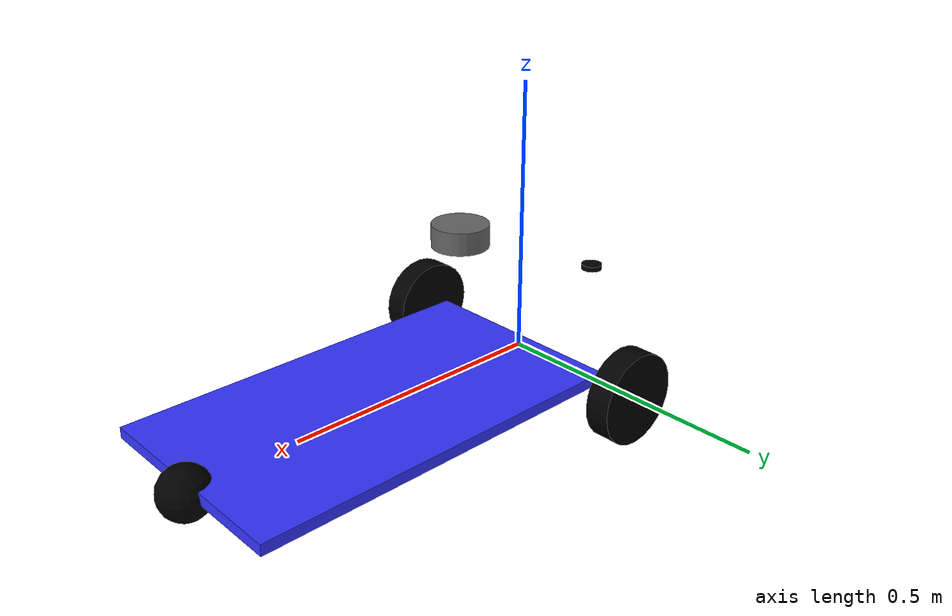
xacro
<?xml version="1.0"?>
<robot name="hoverboard_robot" xmlns:xacro="http://ros.org/wiki/xacro">

    <xacro:include filename="materials.xacro" />
    <xacro:include filename="macros.xacro" />
    <xacro:include filename="wheels.xacro" />
    <xacro:include filename="ros2_control.xacro" />
    <xacro:include filename="lidar.xacro" />
    <xacro:include filename="gps.xacro" />
    <xacro:include filename="mag.xacro" />

    <xacro:property name="plate_length" value="0.7" />
    <xacro:property name="plate_width" value="0.4" />
    <xacro:property name="plate_height" value="0.02" />

    <xacro:property name="chassis_weight" value="1.0" />

    <xacro:property name="driving_wheel_diameter" value="0.165" />
    <xacro:property name="driving_wheel_thickness" value="0.045" />
    <xacro:property name="driving_wheel_weight" value="2.2" />

    <xacro:property name="caster_wheel_diameter" value="0.09" />
    <xacro:property name="caster_wheel_weight" value="0.1" />

    <link name="base_link">
    </link>

    <link name="plate">
        <visual>
            <origin xyz="0.35 0 0.01"/>
            <geometry>
                <box size="0.7 0.4 0.02"/>
            </geometry>
            <material name="blue"/>
        </visual>
        <collision>
            <origin xyz="0.35 0 0.01"/>
            <geometry>
                <box size="0.7 0.4 0.02"/>
            </geometry>
        </collision>
        <xacro:box_inertia mass="5" x="0.7" y="0.4" z="0.02">
            <origin xyz="0 0 0.01" rpy="0.0 0.0 0.0"/>
        </xacro:box_inertia>
    </link>

    <joint name="base_link_plate_joint" type="fixed">
        <origin xyz="0 0 0"/>
        <parent link="base_link" />
        <child link="plate" />
    </joint>

    <xacro:driving_wheel suffix="left" reflect="1"/>
    <xacro:driving_wheel suffix="right" reflect="-1"/>

    <xacro:caster_wheel suffix="back" reflect="1" />

    <xacro:hoverboard_ros2_control name="Hoverboard" />

</robot>

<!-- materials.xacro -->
<robot xmlns:xacro="http://ros.org/wiki/xacro">

    <material name="silver">
        <color rgba="0.60 0.60 0.60 1"/>
    </material>

    <material name="gray">
        <color rgba="0.40 0.40 0.40 1"/>
    </material>

    <material name="black">
        <color rgba="0 0 0 1"/>
    </material>

    <material name="green">
        <color rgba="0 0.5 0 1" />
    </material>

    <material name="red">
        <color rgba="0.5 0 0 1" />
    </material>

    <material name="blue">
        <color rgba="0.2 0.2 1 1" />
    </material>

    <material name="white">
        <color rgba="1 1 1 1" />
    </material>
    <material name="blueclear">
        <color rgba="0.2 0.2 1 0.3" />
    </material>

</robot>

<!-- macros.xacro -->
<robot xmlns:xacro="http://ros.org/wiki/xacro">

    <xacro:macro name="default_inertial" params="mass">
        <inertial>
            <mass value="${mass}" />
            <inertia ixx="1e-3" ixy="0.0" ixz="0.0" iyy="1e-3" iyz="0.0" izz="1e-3"/>
        </inertial>
    </xacro:macro>

    <!-- Define some commonly used intertial properties  -->
    <xacro:macro name="box_inertia" params="mass x y z *origin">
        <inertial>
            <xacro:insert_block name="origin"/>
            <mass value="${mass}" />
            <inertia ixx="${(1/12) * mass * (y*y+z*z)}" ixy="0.0" ixz="0.0"
                    iyy="${(1/12) * mass * (x*x+z*z)}" iyz="0.0"
                    izz="${(1/12) * mass * (x*x+y*y)}" />
        </inertial>
    </xacro:macro>

    <xacro:macro name="cylinder_inertia" params="m r h roll">
        <inertial>
            <origin xyz="0 0 0" rpy="${roll} 0 0" />
            <mass value="${m}"/>
            <inertia ixx="${(m/12) * (3*r*r + h*h)}" ixy = "0" ixz = "0" iyy="${(m/12) * (3*r*r + h*h)}" iyz = "0" izz="${(m/2) * (r*r)}"/>
        </inertial>
    </xacro:macro>

    <xacro:macro name="sphere_inertia" params="m r">
        <inertial>
            <mass value="${m}"/>
            <inertia ixx="${(2/5) * m * (r*r)}" ixy="0.0" ixz="0.0" iyy="${(2/5) * m * (r*r)}" iyz="0.0" izz="${(2/5) * m * (r*r)}"/>
        </inertial>
    </xacro:macro>

</robot>

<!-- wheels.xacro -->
<robot xmlns:xacro="http://ros.org/wiki/xacro">

    <!-- TODO: The model is made in a very simple form, it would be nice to make it a bit better. Is someone willing? -->
    <xacro:macro name="driving_wheel" params="suffix reflect">
        <link name="driving_wheel_${suffix}">
            <visual>
                <origin xyz="0 0 0" rpy="${pi/2} 0 0" />
                <geometry>
                    <cylinder radius="${driving_wheel_diameter/2}" length="${driving_wheel_thickness}"/>
                </geometry>
                <material name="black"/>
            </visual>
            <collision>
                <origin xyz="0 0 0" rpy="${pi/2} 0 0" />
                <contact_coefficients mu="100.0" kp="0.0" kd="0.0" />
                <geometry>
                    <cylinder radius="${driving_wheel_diameter/2}" length="${driving_wheel_thickness}"/>
                </geometry>
            </collision>
            <xacro:cylinder_inertia m="${driving_wheel_weight}" r="${driving_wheel_diameter/2}" h="${driving_wheel_thickness}" roll="${pi/2}"/>
        </link>

        <joint name="driving_wheel_${suffix}_joint" type="continuous">
            <axis xyz="0 1 0" rpy="0 0 0" />
            <parent link="base_link"/>
            <child link="driving_wheel_${suffix}"/>
            <origin xyz="0 ${0.26*reflect} 0.0" rpy="0 0 0"/>
        </joint>

        <gazebo reference="driving_wheel_${suffix}">
            <mu1 value="0.50"/>
            <mu2 value="3.0"/>
            <kp value="10000000.0" />
            <kd value="100.0" />
            <fdir1 value="0 0 1"/>
            <material>Gazebo/Black</material>
        </gazebo>

    </xacro:macro>

    <xacro:macro name="caster_wheel" params="suffix reflect">
        <link name="caster_wheel_${suffix}">
            <visual>
                <origin xyz="0 0 0" rpy="0 0 0" />
                <geometry>
                    <sphere radius="${caster_wheel_diameter/2}" />
                </geometry>
                <material name="black"/>
            </visual>
            <collision>
                <origin xyz="0 0 0" rpy="0 0 0" />
                <contact_coefficients mu="0.0" kp="0.0" kd="0.0" />
                <geometry>
                    <sphere radius="${caster_wheel_diameter/2}" />
                </geometry>
            </collision>
            <xacro:sphere_inertia m="${caster_wheel_weight}" r="${caster_wheel_diameter/2}"/>
        </link>

        <joint name="caster_wheel_${suffix}_joint" type="fixed">
            <parent link="base_link"/>
            <child link="caster_wheel_${suffix}"/>
            <origin xyz="0.7 0 0" rpy="0 0 0"/>
        </joint>

        <gazebo reference="caster_wheel_${suffix}">
            <mu1 value="0.0"/>
            <mu2 value="0.0"/>
            <kp value="10000000.0" />
            <kd value="100.0" />
            <fdir1 value="0 0 1"/>
            <material>Gazebo/Red</material>
        </gazebo>

    </xacro:macro>

</robot>

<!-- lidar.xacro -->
<robot name="hoverboard_robot" xmlns:xacro="http://ros.org/wiki/xacro">

    <joint name="laser_joint" type="fixed">
        <parent link="base_link"/>
        <child link="laser"/>
        <origin xyz="0.15 0 0.26" rpy="0 0 ${pi}"/>
    </joint>

    <link name="laser">

        <visual>
            <geometry>
                <cylinder radius="0.05" length="0.04"/>
            </geometry>
            <material name="gray"/>
        </visual>
        <collision>
            <contact_coefficients mu="100.0" kp="0.0" kd="0.0" />
            <geometry>
                <cylinder radius="0.05" length="0.04"/>
            </geometry>
        </collision>
    </link>

</robot>

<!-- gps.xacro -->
<robot name="hoverboard_robot" xmlns:xacro="http://ros.org/wiki/xacro">

    <joint name="gps_joint" type="fixed">
        <parent link="plate"/>
        <child link="gps"/>
        <origin xyz="-0.2 0 0.1" rpy="0 0 0"/>
    </joint>

    <link name="gps">

        <visual>
            <geometry>
                <cylinder radius="0.02" length="0.01"/>
            </geometry>
            <material name="black"/>
        </visual>
        <collision>
            <contact_coefficients mu="100.0" kp="0.0" kd="0.0" />
            <geometry>
                <cylinder radius="0.02" length="0.01"/>
            </geometry>
        </collision>
    </link>

</robot>

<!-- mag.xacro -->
<robot name="hoverboard_robot" xmlns:xacro="http://ros.org/wiki/xacro">

    <joint name="magnetometer_link_joint" type="fixed">
        <parent link="plate"/>
        <child link="magnetometer_link"/>
        <origin xyz="0 0 0" rpy="0 0 0"/>
    </joint>

    <link name="magnetometer_link">

        <visual>
            <geometry>
                <box size="0.02 0.02 0.01"/>
            </geometry>
            <material name="blue"/>
        </visual>
        <collision>
            <contact_coefficients mu="100.0" kp="0.0" kd="0.0" />
            <geometry>
                <box size="0.02 0.02 0.01"/>
            </geometry>
        </collision>
    </link>

</robot>
